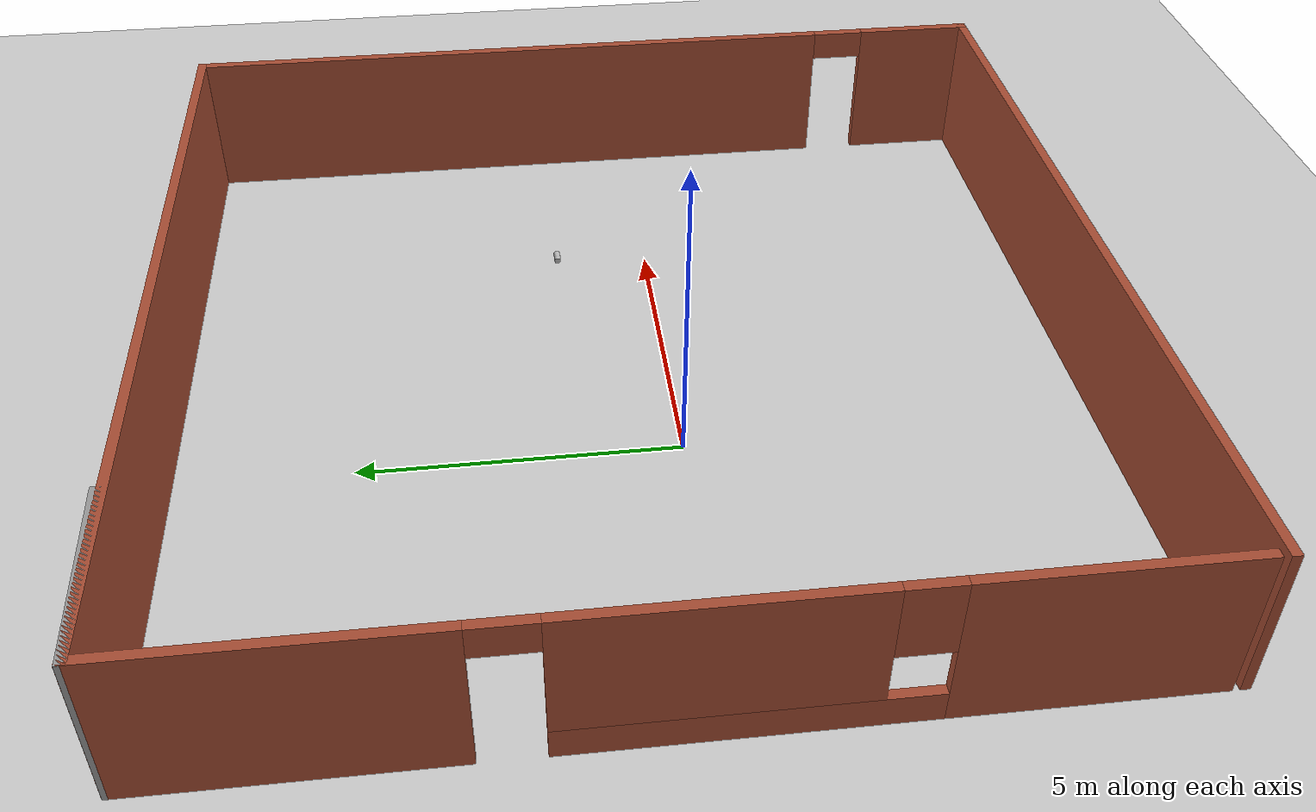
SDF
<sdf version="1.7">
 <world name="default">
  <light name="sun" type="directional">
   <pose>0 0 10 0 -0 0</pose>
   <diffuse>0.8 0.8 0.8 1</diffuse>
   <specular>0.2 0.2 0.2 1</specular>
   <attenuation>
    <range>1000</range>
    <constant>0.9</constant>
    <linear>0.01</linear>
    <quadratic>0.001</quadratic>
   </attenuation>
   <direction>-0.5 0.1 -0.9</direction>
   <spot><inner_angle>0</inner_angle><outer_angle>0</outer_angle><falloff>0</falloff></spot>
  </light>
  <model name="ground_plane">
   <static>1</static>
   <link name="link">
    <collision name="collision">
     <geometry><plane><normal>0 0 1</normal><size>100 100</size></plane></geometry>
     <surface>
      <contact><collide_bitmask>65535</collide_bitmask></contact>
      <friction><ode><mu>100</mu><mu2>50</mu2></ode></friction>
     </surface>
    </collision>
    <visual name="visual">
     <cast_shadows>0</cast_shadows>
     <geometry><plane><normal>0 0 1</normal><size>100 100</size></plane></geometry>
     <material>
      <script><uri>file://media/materials/scripts/gazebo.material</uri><name>Gazebo/Grey</name></script>
     </material>
    </visual>
   </link>
  </model>
  <gravity>0 0 -9.8</gravity>
  <magnetic_field>6e-06 2.3e-05 -4.2e-05</magnetic_field>
  <atmosphere type="adiabatic"/>
  <physics type="ode">
   <max_step_size>0.001</max_step_size>
   <real_time_factor>1</real_time_factor>
   <real_time_update_rate>1000</real_time_update_rate>
  </physics>
  <scene><ambient>0.4 0.4 0.4 1</ambient><background>0.7 0.7 0.7 1</background><shadows>1</shadows></scene>
  <audio><device>default</device></audio>
  <spherical_coordinates>
   <surface_model>EARTH_WGS84</surface_model>
   <latitude_deg>0</latitude_deg>
   <longitude_deg>0</longitude_deg>
   <elevation>0</elevation>
   <heading_deg>0</heading_deg>
  </spherical_coordinates>
  <model name="beer">
   <link name="link">
    <pose>0 0 0.115 0 -0 0</pose>
    <inertial>
     <mass>0.39</mass>
     <inertia><ixx>0.00058</ixx><ixy>0</ixy><ixz>0</ixz><iyy>0.00058</iyy><iyz>0</iyz><izz>0.00019</izz></inertia>
    </inertial>
    <collision name="collision">
     <geometry><cylinder><radius>0.055</radius><length>0.23</length></cylinder></geometry>
    </collision>
    <visual name="visual">
     <geometry><cylinder><radius>0.055</radius><length>0.23</length></cylinder></geometry>
     <material>
      <script>
       <uri>model://beer/materials/scripts</uri>
       <uri>model://beer/materials/textures</uri>
       <name>Beer/Diffuse</name>
      </script>
     </material>
    </visual>
   </link>
   <pose>5.06649 1.55583 0.055 -1.57127 -0.729146 -1.56264</pose>
  </model>
  <model name="test">
   <pose>1.61522 0.638945 0 0 -0 0</pose>
   <link name="Wall_0">
    <pose>-6.92392 0.084555 0 0 -0 1.5708</pose>
    <visual name="Wall_0_Visual_0">
     <pose>-5.21493 0 1.25 0 -0 0</pose>
     <geometry><box><size>3.82014 0.15 2.5</size></box></geometry>
     <material>
      <script><uri>file://media/materials/scripts/gazebo.material</uri><name>Gazebo/Bricks</name></script>
      <ambient>1 1 1 1</ambient>
     </material>
     <meta><layer>0</layer></meta>
    </visual>
    <collision name="Wall_0_Collision_0">
     <geometry><box><size>3.82014 0.15 2.5</size></box></geometry>
     <pose>-5.21493 0 1.25 0 -0 0</pose>
    </collision>
    <visual name="Wall_0_Visual_1">
     <pose>4.87406 0 1.25 0 -0 0</pose>
     <geometry><box><size>4.50188 0.15 2.5</size></box></geometry>
     <material>
      <script><uri>file://media/materials/scripts/gazebo.material</uri><name>Gazebo/Bricks</name></script>
      <ambient>1 1 1 1</ambient>
     </material>
     <meta><layer>0</layer></meta>
    </visual>
    <collision name="Wall_0_Collision_1">
     <geometry><box><size>4.50188 0.15 2.5</size></box></geometry>
     <pose>4.87406 0 1.25 0 -0 0</pose>
    </collision>
    <visual name="Wall_0_Visual_2">
     <pose>-0.790872 0 0.25 0 -0 0</pose>
     <geometry><box><size>5.02798 0.15 0.5</size></box></geometry>
     <material>
      <script><uri>file://media/materials/scripts/gazebo.material</uri><name>Gazebo/Bricks</name></script>
      <ambient>1 1 1 1</ambient>
     </material>
     <meta><layer>0</layer></meta>
    </visual>
    <collision name="Wall_0_Collision_2">
     <geometry><box><size>5.02798 0.15 0.5</size></box></geometry>
     <pose>-0.790872 0 0.25 0 -0 0</pose>
    </collision>
    <visual name="Wall_0_Visual_3">
     <pose>-0.390872 0 1.5 0 -0 0</pose>
     <geometry><box><size>4.22798 0.15 2</size></box></geometry>
     <material>
      <script><uri>file://media/materials/scripts/gazebo.material</uri><name>Gazebo/Bricks</name></script>
      <ambient>1 1 1 1</ambient>
     </material>
     <meta><layer>0</layer></meta>
    </visual>
    <collision name="Wall_0_Collision_3">
     <geometry><box><size>4.22798 0.15 2</size></box></geometry>
     <pose>-0.390872 0 1.5 0 -0 0</pose>
    </collision>
    <visual name="Wall_0_Visual_4">
     <pose>-2.90486 0 1.9 0 -0 0</pose>
     <geometry><box><size>0.8 0.15 1.2</size></box></geometry>
     <material>
      <script><uri>file://media/materials/scripts/gazebo.material</uri><name>Gazebo/Bricks</name></script>
      <ambient>1 1 1 1</ambient>
     </material>
     <meta><layer>0</layer></meta>
    </visual>
    <collision name="Wall_0_Collision_4">
     <geometry><box><size>0.8 0.15 1.2</size></box></geometry>
     <pose>-2.90486 0 1.9 0 -0 0</pose>
    </collision>
    <visual name="Wall_0_Visual_5">
     <pose>2.17312 0 2.25 0 -0 0</pose>
     <geometry><box><size>0.9 0.15 0.5</size></box></geometry>
     <material>
      <script><uri>file://media/materials/scripts/gazebo.material</uri><name>Gazebo/Bricks</name></script>
      <ambient>1 1 1 1</ambient>
     </material>
     <meta><layer>0</layer></meta>
    </visual>
    <collision name="Wall_0_Collision_5">
     <geometry><box><size>0.9 0.15 0.5</size></box></geometry>
     <pose>2.17312 0 2.25 0 -0 0</pose>
    </collision>
   </link>
   <link name="Wall_2">
    <collision name="Wall_2_Collision">
     <geometry><box><size>2.84912 0.15 2.5</size></box></geometry>
     <pose>0 0 1.25 0 -0 0</pose>
    </collision>
    <visual name="Wall_2_Visual">
     <pose>0 0 1.25 0 -0 0</pose>
     <geometry><box><size>2.84912 0.15 2.5</size></box></geometry>
     <material>
      <script><uri>file://media/materials/scripts/gazebo.material</uri><name>Gazebo/Grey</name></script>
      <ambient>1 1 1 1</ambient>
     </material>
     <meta><layer>0</layer></meta>
    </visual>
    <pose>-5.57493 7.17392 0 0 -0 -3.11242</pose>
   </link>
   <link name="Wall_3">
    <collision name="Wall_3_Collision">
     <geometry><box><size>14 0.15 2.5</size></box></geometry>
     <pose>0 0 1.25 0 -0 0</pose>
    </collision>
    <visual name="Wall_3_Visual">
     <pose>0 0 1.25 0 -0 0</pose>
     <geometry><box><size>14 0.15 2.5</size></box></geometry>
     <material>
      <script><uri>file://media/materials/scripts/gazebo.material</uri><name>Gazebo/Bricks</name></script>
      <ambient>1 1 1 1</ambient>
     </material>
     <meta><layer>0</layer></meta>
    </visual>
    <pose>0.001078 7.13455 0 0 -0 0</pose>
   </link>
   <link name="Wall_4">
    <pose>6.92608 -0.040445 0 0 -0 -1.5708</pose>
    <visual name="Wall_4_Visual_0">
     <pose>-1.48118 0 1.25 0 -0 0</pose>
     <geometry><box><size>11.5376 0.15 2.5</size></box></geometry>
     <material>
      <script><uri>file://media/materials/scripts/gazebo.material</uri><name>Gazebo/Bricks</name></script>
      <ambient>1 1 1 1</ambient>
     </material>
     <meta><layer>0</layer></meta>
    </visual>
    <collision name="Wall_4_Collision_0">
     <geometry><box><size>11.5376 0.15 2.5</size></box></geometry>
     <pose>-1.48118 0 1.25 0 -0 0</pose>
    </collision>
    <visual name="Wall_4_Visual_1">
     <pose>6.21882 0 1.25 0 -0 0</pose>
     <geometry><box><size>2.06236 0.15 2.5</size></box></geometry>
     <material>
      <script><uri>file://media/materials/scripts/gazebo.material</uri><name>Gazebo/Bricks</name></script>
      <ambient>1 1 1 1</ambient>
     </material>
     <meta><layer>0</layer></meta>
    </visual>
    <collision name="Wall_4_Collision_1">
     <geometry><box><size>2.06236 0.15 2.5</size></box></geometry>
     <pose>6.21882 0 1.25 0 -0 0</pose>
    </collision>
    <visual name="Wall_4_Visual_2">
     <pose>4.73764 0 2.25 0 -0 0</pose>
     <geometry><box><size>0.9 0.15 0.5</size></box></geometry>
     <material>
      <script><uri>file://media/materials/scripts/gazebo.material</uri><name>Gazebo/Bricks</name></script>
      <ambient>1 1 1 1</ambient>
     </material>
     <meta><layer>0</layer></meta>
    </visual>
    <collision name="Wall_4_Collision_2">
     <geometry><box><size>0.9 0.15 0.5</size></box></geometry>
     <pose>4.73764 0 2.25 0 -0 0</pose>
    </collision>
   </link>
   <link name="Wall_5">
    <collision name="Wall_5_Collision">
     <geometry><box><size>14 0.15 2.5</size></box></geometry>
     <pose>0 0 1.25 0 -0 0</pose>
    </collision>
    <visual name="Wall_5_Visual">
     <pose>0 0 1.25 0 -0 0</pose>
     <geometry><box><size>14 0.15 2.5</size></box></geometry>
     <material>
      <script><uri>file://media/materials/scripts/gazebo.material</uri><name>Gazebo/Bricks</name></script>
      <ambient>1 1 1 1</ambient>
     </material>
     <meta><layer>0</layer></meta>
    </visual>
    <pose>0.001078 -7.21544 0 0 -0 3.14159</pose>
   </link>
   <static>1</static>
  </model>
 </world>
</sdf>
